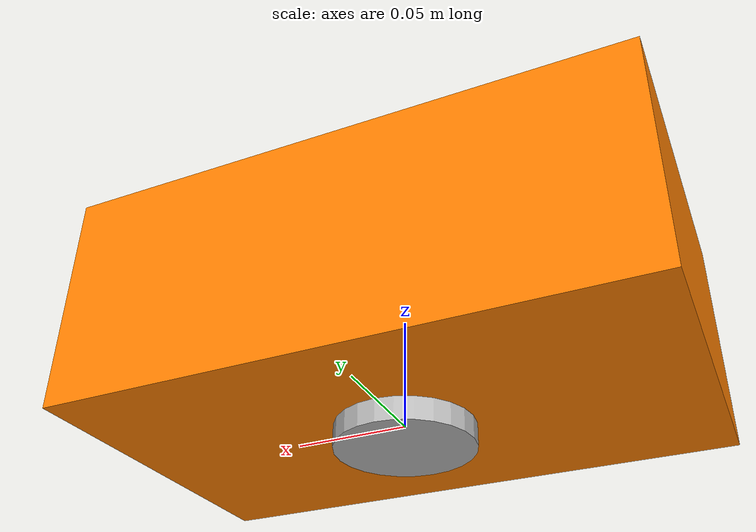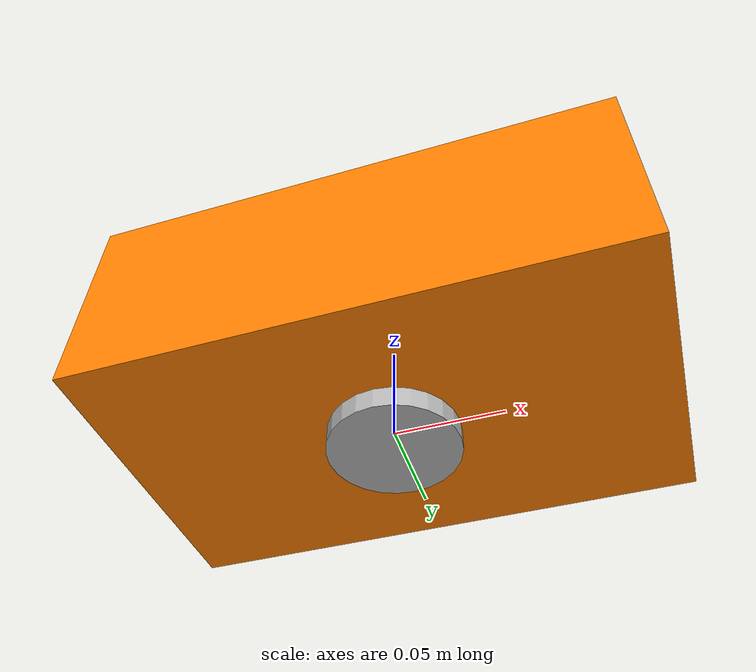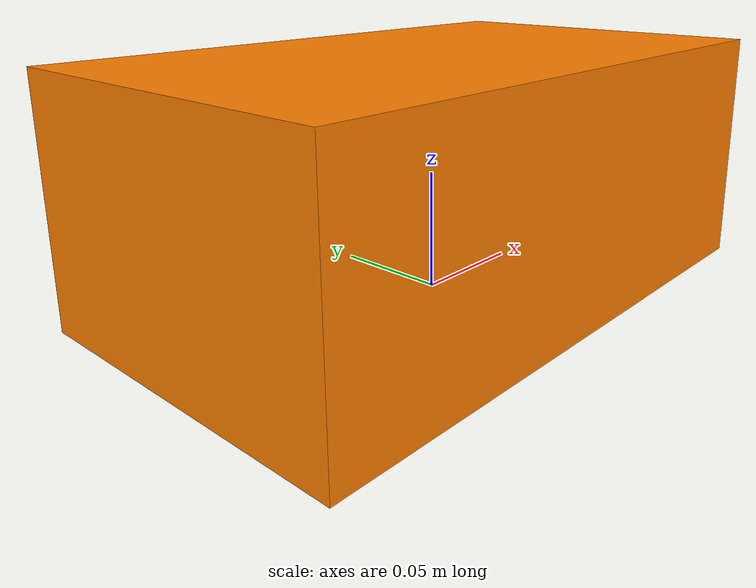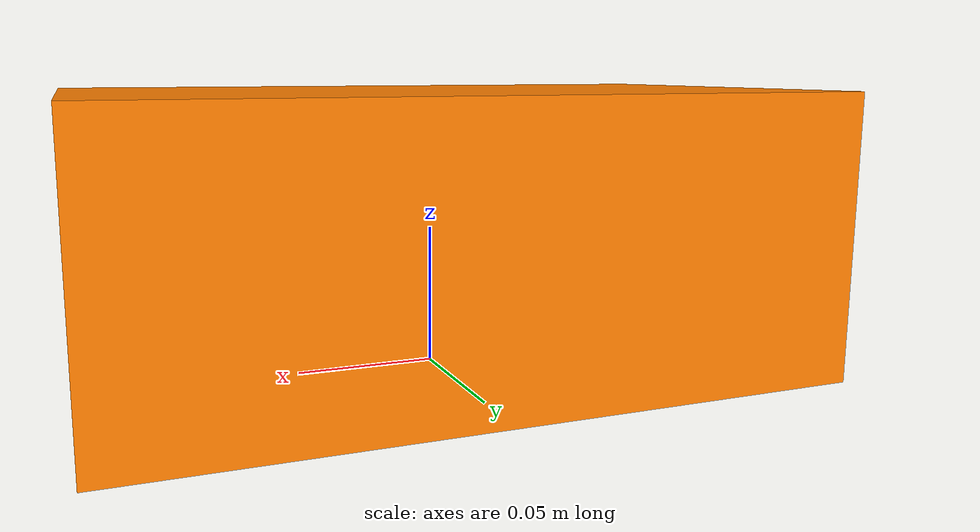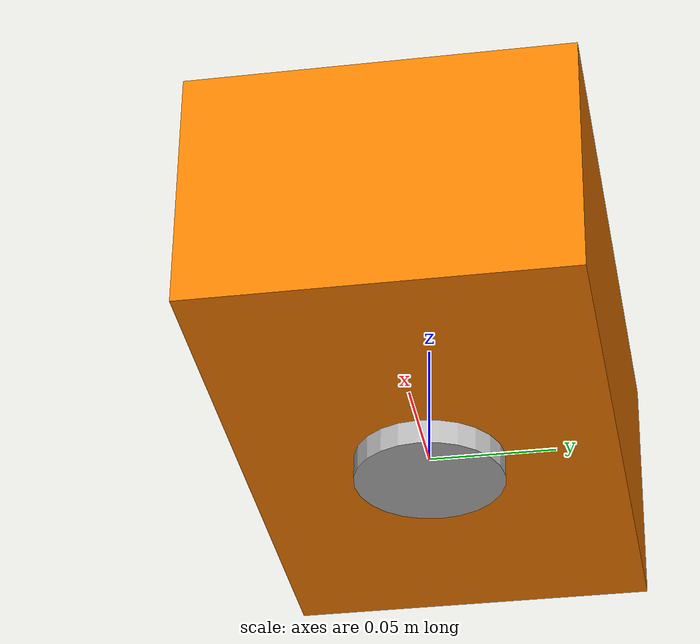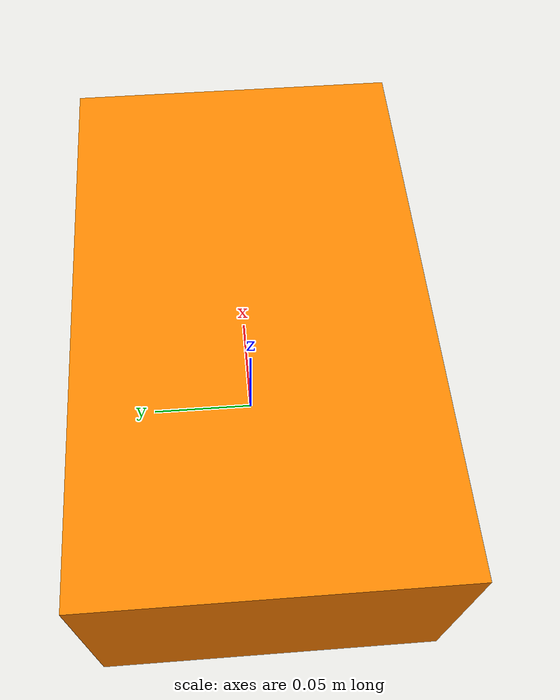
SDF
<?xml version="1.0" ?>
<sdf version="1.7">
  <model name="rc_car">
    <pose>0.0 0.0 0.0 0.0 0.0 0.0</pose>

    <!--BaseFoot-->
    <link name="base_footprint"/>
    <joint name="base_footprint_joint" type="fixed">
      <parent>base_link</parent>
      <child>base_footprint</child>
      <pose>0 0 0.01 0 0 0</pose>
    </joint>
    <!-- Base Link -->
    <link name="base_link">
      <inertial>
        <!-- 질량 중심 위치 -->
        <pose>0 0 0.05 0 0 0</pose>
        <inertia>
          <ixx>0.05</ixx>
          <ixy>0.0</ixy>
          <ixz>0.0</ixz>
          <iyy>0.05</iyy>
          <iyz>0.0</iyz>
          <izz>0.09</izz>
        </inertia>
        <mass>1.0</mass>
      </inertial>
      <visual name="base_visual">
        <pose>0 0 0.05 0 0 0</pose> <!-- 시각적 요소 위치 -->
        <geometry>
          <box>
            <size>0.25 0.15 0.10</size> <!-- 시각적 요소 크기 -->
          </box>
        </geometry>
        <material>
          <ambient>1.0 0.5 0.0 1.0</ambient>
          <diffuse>1.0 0.5 0.0 1.0</diffuse>
          <specular>0.5 0.5 0.5 1.0</specular>
        </material>
      </visual>
      <collision name="base_collision">
        <pose>0 0 0.05 0 0 0</pose> <!-- 충돌 상자 위치 -->
        <geometry>
          <box>
            <size>0.25 0.15 0.10</size> <!-- 충돌 상자 크기 -->
          </box>
        </geometry>
        <surface>
          <friction>
            <ode>
              <mu>1.0</mu>
              <mu2>1.0</mu2>
            </ode>
          </friction>
          <contact>
            <ode>
              <soft_cfm>0.0</soft_cfm>
              <soft_erp>0.2</soft_erp>
              <kp>100000</kp>
              <kd>1</kd>
            </ode>
          </contact>
        </surface>
      </collision>
    </link>

    <!-- IMU Sensor -->
    <link name="imu_link">
      <sensor name="rc_imu" type="imu">
        <always_on>true</always_on>
        <update_rate>30</update_rate>
        <imu>
          <angular_velocity>
            <x>
              <noise type="gaussian">
                <mean>0.0</mean>
                <stddev>2e-4</stddev>
              </noise>
            </x>
            <y>
              <noise type="gaussian">
                <mean>0.0</mean>
                <stddev>2e-4</stddev>
              </noise>
            </y>
            <z>
              <noise type="gaussian">
                <mean>0.0</mean>
                <stddev>2e-4</stddev>
              </noise>
            </z>
          </angular_velocity>
          <linear_acceleration>
            <x>
              <noise type="gaussian">
                <mean>0.0</mean>
                <stddev>1.7e-2</stddev>
              </noise>
            </x>
            <y>
              <noise type="gaussian">
                <mean>0.0</mean>
                <stddev>1.7e-2</stddev>
              </noise>
            </y>
            <z>
              <noise type="gaussian">
                <mean>0.0</mean>
                <stddev>1.7e-2</stddev>
              </noise>
            </z>
          </linear_acceleration>
        </imu>
        <plugin name="rc_car_imu" filename="libgazebo_ros_imu_sensor.so">
          <ros>
            <remapping>~/out:=imu</remapping>
          </ros>
        </plugin>
      </sensor>
    </link>
    <joint name="imu_joint" type="fixed">
      <parent>base_link</parent>
      <child>imu_link</child>
      <pose>0 0 0.07 0 0 0</pose>
    </joint>

    <!-- Front Left Wheel -->
    <link name="wheel_left">
      <inertial>
        <pose>0.1 0.075 0.03 0 0 0</pose>
        <mass>0.1</mass>
        <inertia>
          <ixx>0.0001</ixx>
          <ixy>0.0</ixy>
          <ixz>0.0</ixz>
          <iyy>0.0001</iyy>
          <iyz>0.0</iyz>
          <izz>0.0002</izz>
        </inertia>
      </inertial>
      <visual name="wheel_left_visual">
        <geometry>
          <cylinder>
            <radius>0.03</radius>
            <length>0.02</length>
          </cylinder>
        </geometry>
      </visual>
      <collision name="wheel_left_collision">
        <geometry>
          <cylinder>
            <radius>0.03</radius>
            <length>0.02</length>
          </cylinder>
        </geometry>
        <surface>
          <friction>
            <ode>
              <mu>10.00</mu>
              <mu2>10.00</mu2>
              <fdir1>0 0 0</fdir1>
              <slip1>0.0</slip1>
              <slip2>0.0</slip2>
            </ode>
          </friction>
          <contact>
            <ode>
              <soft_cfm>0</soft_cfm>
              <soft_erp>0.2</soft_erp>
              <kp>1e+5</kp>
              <kd>1</kd>
              <max_vel>0.01</max_vel>
              <min_depth>0.001</min_depth>
            </ode>
          </contact>
        </surface>
      </collision>
    </link>
    <joint name="wheel_left_joint" type="revolute">
      <parent>base_link</parent>
      <child>wheel_left</child>
      <pose>0.1 0.075 0.03 0 0 0</pose>
      <axis>
        <xyz>0 0 1</xyz>
        <limit>
          <lower>-3.14159</lower>
          <upper>3.14159</upper>
        </limit>
      </axis>
    </joint>

    <!-- Front Right Wheel -->
    <link name="wheel_right">
      <inertial>
        <pose>0.1 -0.075 0.03 0 0 0</pose>
        <mass>0.1</mass>
        <inertia>
          <ixx>0.0001</ixx>
          <ixy>0.0</ixy>
          <ixz>0.0</ixz>
          <iyy>0.0001</iyy>
          <iyz>0.0</iyz>
          <izz>0.0002</izz>
        </inertia>
      </inertial>
      <visual name="wheel_right_visual">
        <geometry>
          <cylinder>
            <radius>0.03</radius>
            <length>0.02</length>
          </cylinder>
        </geometry>
      </visual>
      <collision name="wheel_right_collision">
        <geometry>
          <cylinder>
            <radius>0.03</radius>
            <length>0.02</length>
          </cylinder>
        </geometry>
        <surface>
          <friction>
            <ode>
              <mu>10.00</mu>
              <mu2>10.00</mu2>
              <fdir1>0 0 0</fdir1>
              <slip1>0.0</slip1>
              <slip2>0.0</slip2>
            </ode>
          </friction>
          <contact>
            <ode>
              <soft_cfm>0</soft_cfm>
              <soft_erp>0.2</soft_erp>
              <kp>1e+5</kp>
              <kd>1</kd>
              <max_vel>0.01</max_vel>
              <min_depth>0.001</min_depth>
            </ode>
          </contact>
        </surface>
      </collision>
    </link>
    <joint name="wheel_right_joint" type="revolute">
      <parent>base_link</parent>
      <child>wheel_right</child>
      <pose>0.1 -0.075 0.03 0 0 0</pose>
      <axis>
        <xyz>0 0 1</xyz>
        <limit>
          <lower>-3.14159</lower>
          <upper>3.14159</upper>
        </limit>
      </axis>
    </joint>

    <link name="rear_left_wheel">
      <inertial>
        <pose>-0.1 0.075 0.03 0 0 0</pose>
        <mass>0.1</mass>
        <inertia>
          <ixx>0.0001</ixx>
          <ixy>0.0</ixy>
          <ixz>0.0</ixz>
          <iyy>0.0001</iyy>
          <iyz>0.0</iyz>
          <izz>0.0002</izz>
        </inertia>
      </inertial>
      <visual name="rear_left_wheel_visual">
        <geometry>
          <cylinder>
            <radius>0.03</radius>
            <length>0.02</length>
          </cylinder>
        </geometry>
      </visual>
      <collision name="rear_left_wheel_collision">
        <geometry>
          <cylinder>
            <radius>0.03</radius>
            <length>0.02</length>
          </cylinder>
        </geometry>
        <surface>
          <friction>
            <ode>
              <mu>10.00</mu>
              <mu2>10.00</mu2>
              <fdir1>0 0 0</fdir1>
              <slip1>0.0</slip1>
              <slip2>0.0</slip2>
            </ode>
          </friction>
        </surface>
      </collision>
    </link>
    <joint name="rear_left_wheel_joint" type="revolute">
      <parent>base_link</parent>
      <child>rear_left_wheel</child>
      <pose>-0.1 0.075 0.03 0 0 0</pose>
      <axis>
        <xyz>0 0 1</xyz>
        <limit>
          <lower>-3.14159</lower>
          <upper>3.14159</upper>
        </limit>
      </axis>
    </joint>

    <!-- Rear Right Wheel -->
    <link name="rear_right_wheel">
      <inertial>
        <pose>-0.1 -0.075 0.03 0 0 0</pose>
        <mass>0.1</mass>
        <inertia>
          <ixx>0.0001</ixx>
          <ixy>0.0</ixy>
          <ixz>0.0</ixz>
          <iyy>0.0001</iyy>
          <iyz>0.0</iyz>
          <izz>0.0002</izz>
        </inertia>
      </inertial>
      <visual name="rear_right_wheel_visual">
        <geometry>
          <cylinder>
            <radius>0.03</radius>
            <length>0.02</length>
          </cylinder>
        </geometry>
      </visual>
      <collision name="rear_right_wheel_collision">
        <geometry>
          <cylinder>
            <radius>0.03</radius>
            <length>0.02</length>
          </cylinder>
        </geometry>
        <surface>
          <friction>
            <ode>
              <mu>10.00</mu>
              <mu2>10.00</mu2>
              <fdir1>0 0 0</fdir1>
              <slip1>0.0</slip1>
              <slip2>0.0</slip2>
            </ode>
          </friction>
        </surface>
      </collision>
    </link>
    <joint name="rear_right_wheel_joint" type="revolute">
      <parent>base_link</parent>
      <child>rear_right_wheel</child>
      <pose>-0.1 -0.075 0.03 0 0 0</pose>
      <axis>
        <xyz>0 0 1</xyz>
        <limit>
          <lower>-3.14159</lower>
          <upper>3.14159</upper>
        </limit>
      </axis>
    </joint>

    <!-- Plugins -->
    <plugin name="rc_car_diff_drive" filename="libgazebo_ros_diff_drive.so">
      <ros>
        <remapping>/tf:=tf</remapping>
      </ros>
      <update_rate>50</update_rate>

      <!-- wheels -->
      <left_joint>wheel_left_joint</left_joint>
      <right_joint>wheel_right_joint</right_joint>

      <!-- kinematics -->
      <wheel_separation>0.14</wheel_separation>
      <wheel_diameter>0.06</wheel_diameter>

      <!-- limits -->
      <max_wheel_torque>20</max_wheel_torque>
      <max_wheel_acceleration>1.0</max_wheel_acceleration>

      <!-- command topic -->
      <command_topic>cmd_vel</command_topic>

      <!-- odometry settings -->
      <publish_odom>true</publish_odom>
      <publish_odom_tf>true</publish_odom_tf>
      <publish_wheel_tf>false</publish_wheel_tf>
      <odometry_topic>odom</odometry_topic>
      <odometry_frame>odom</odometry_frame>
      <robot_base_frame>base_footprint</robot_base_frame>
    </plugin>

    <plugin name="rc_car_joint_state" filename="libgazebo_ros_joint_state_publisher.so">
      <ros>
        <remapping>~/out:=joint_states</remapping>
      </ros>
      <update_rate>30</update_rate>
      <joint_name>wheel_left_joint</joint_name>
      <joint_name>wheel_right_joint</joint_name>
    </plugin>
  </model>
</sdf>
